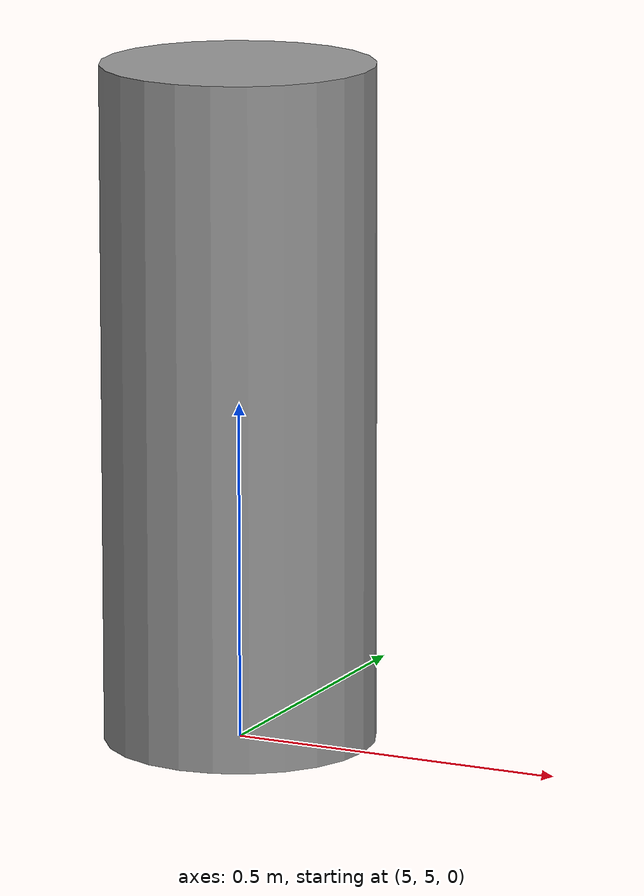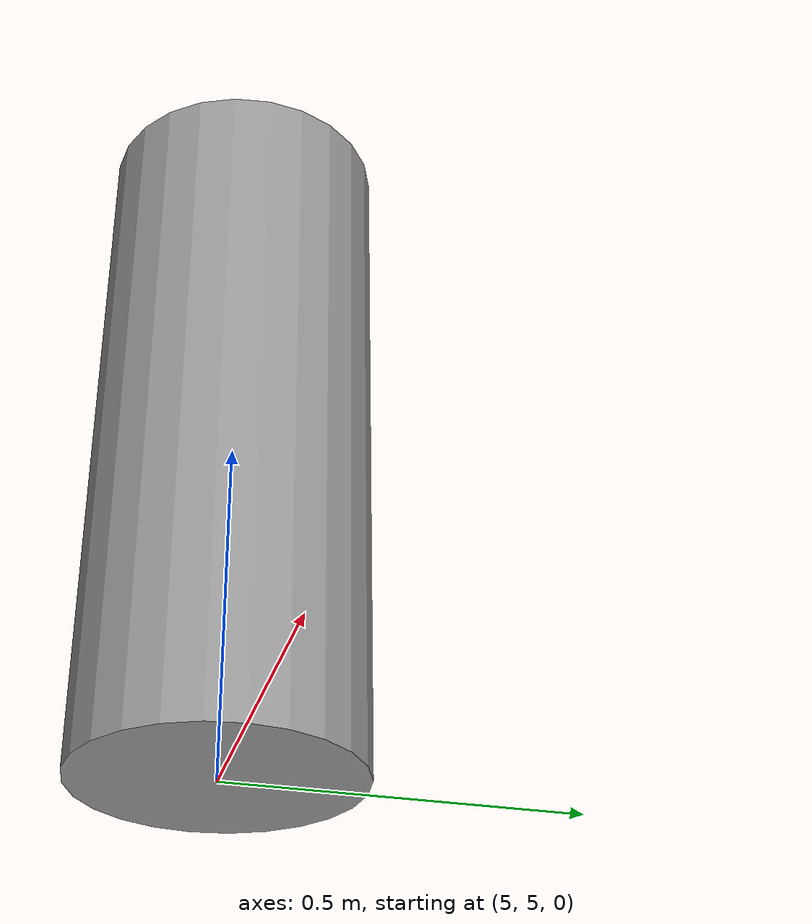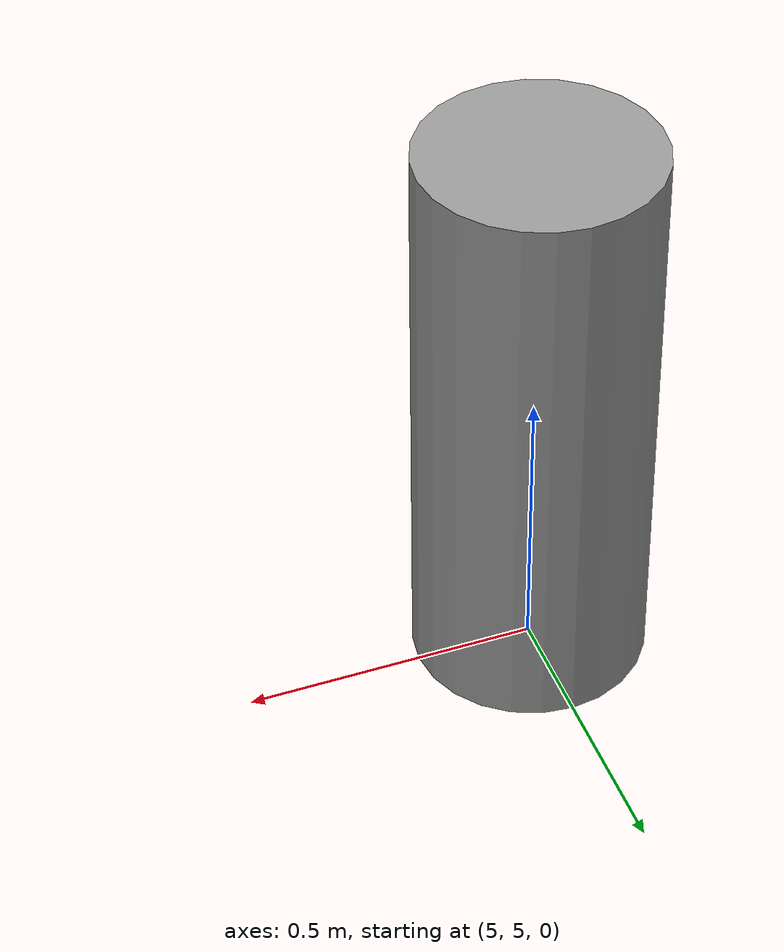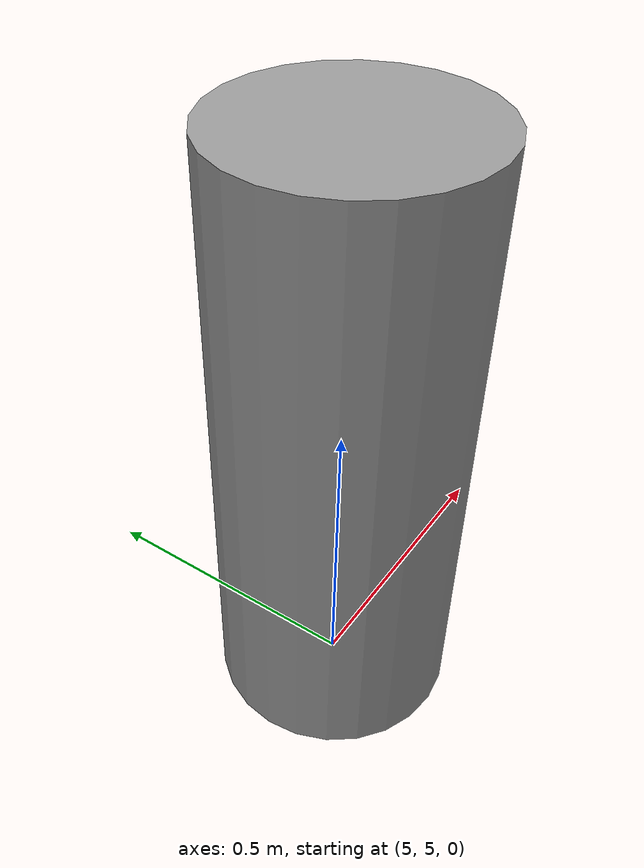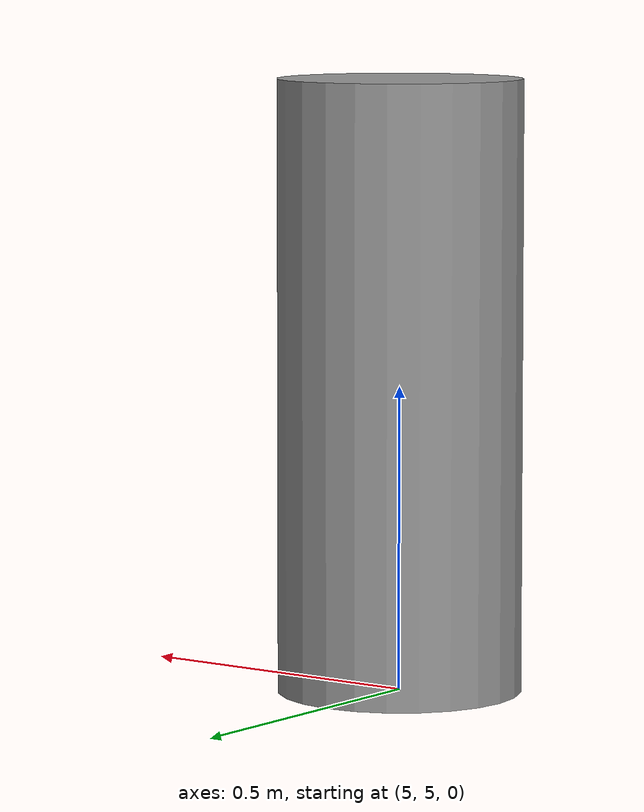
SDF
<?xml version="1.0" ?>
<sdf version="1.5">
  <model name="cylinderModel">
    <static>true</static>
    <link name="link">
        <inertial>
          <inertia>
            <ixx>10</ixx>
            <ixy>0</ixy>
            <ixz>0</ixz>
            <iyy>10</iyy>
            <iyz>0</iyz>
            <izz>10</izz>
          </inertia>
          <mass>100</mass>
        </inertial>
      <pose frame=''>5 5 0.5 0 0 0</pose>
      <collision name="cylinder">
        <pose>0 0 0 0 0 0</pose>
        <geometry>
          <cylinder>
            <radius>0.2</radius>
            <length>1.0</length>
          </cylinder>
        </geometry>
      </collision>
      <visual name="cylinder">
        <pose>0 0 0 0 0 0</pose>
        <geometry>
          <cylinder>
            <radius>0.2</radius>
            <length>1.0</length>
          </cylinder>
        </geometry>
        <material>
          <script>
            <uri>file://media/materials/scripts/gazebo.material</uri>
            <name>Gazebo/Grey</name>
          </script>
        </material>
      </visual>
    </link>
  </model>
</sdf>
